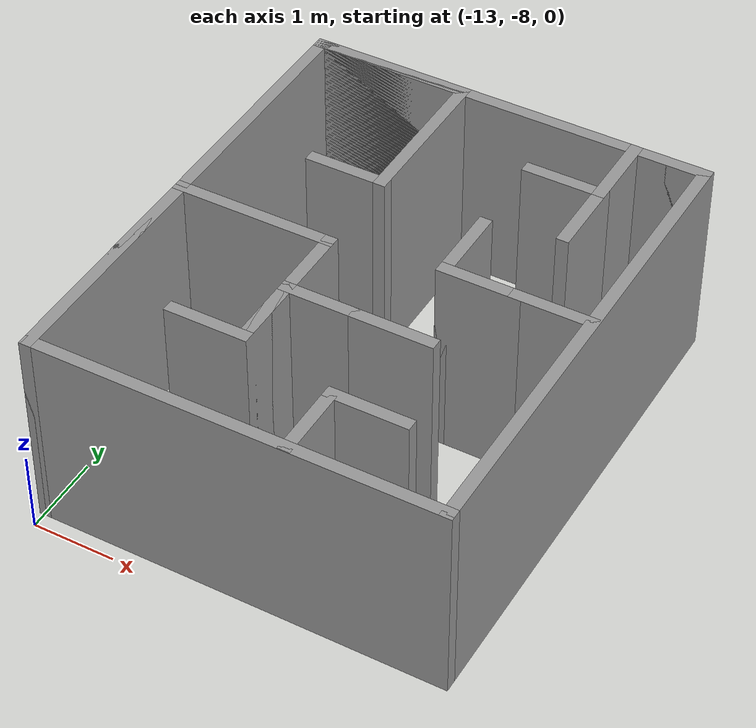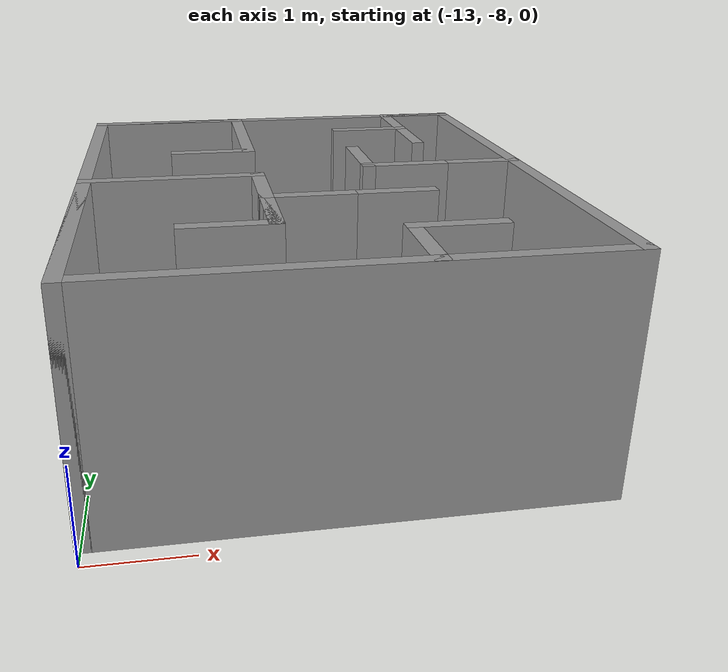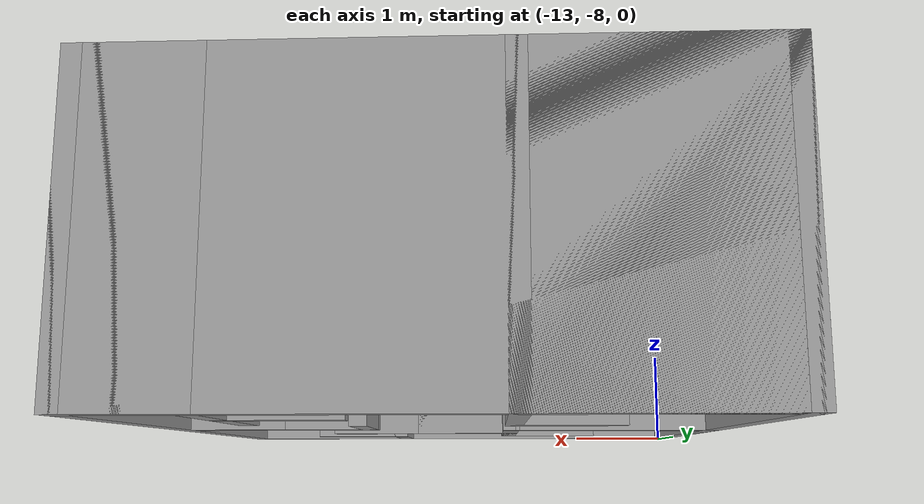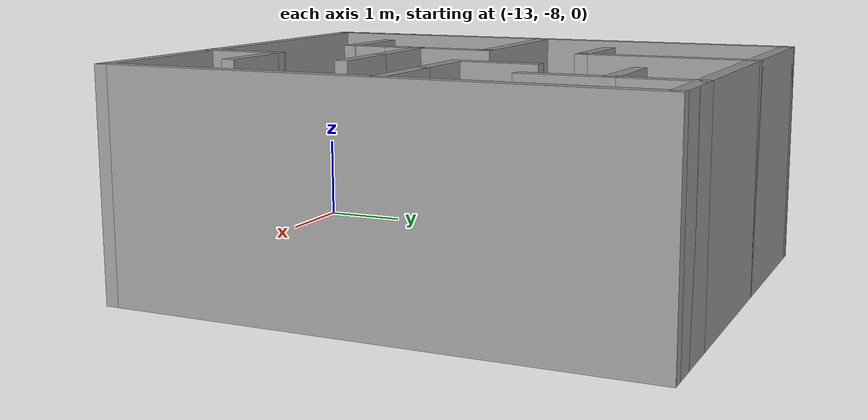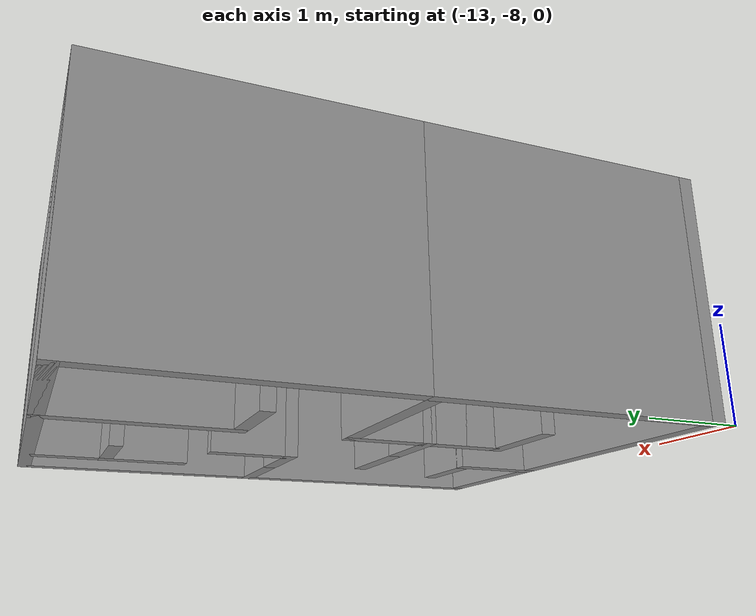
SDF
<?xml version='1.0'?>
<sdf version='1.6'>
  <model name='building4'>
    <pose frame=''>-10.555 -4.825 0 0 -0 0</pose>
    <link name='Wall_0'>
      <collision name='Wall_0_Collision'>
        <geometry>
          <box>
            <size>5 0.15 2.5</size>
          </box>
        </geometry>
        <pose frame=''>0 0 1.25 0 -0 0</pose>
      </collision>
      <visual name='Wall_0_Visual'>
        <pose frame=''>0 0 1.25 0 -0 0</pose>
        <geometry>
          <box>
            <size>5 0.15 2.5</size>
          </box>
        </geometry>
        <material>
          <script>
            <uri>file://media/materials/scripts/gazebo.material</uri>
            <name>Gazebo/Grey</name>
          </script>
          <ambient>1 1 1 1</ambient>
        </material>
        <meta>
          <layer>0</layer>
        </meta>
      </visual>
      <pose frame=''>0 2.925 0 0 -0 0</pose>
    </link>
    <link name='Wall_1'>
      <collision name='Wall_1_Collision'>
        <geometry>
          <box>
            <size>6 0.15 2.5</size>
          </box>
        </geometry>
        <pose frame=''>0 0 1.25 0 -0 0</pose>
      </collision>
      <visual name='Wall_1_Visual'>
        <pose frame=''>0 0 1.25 0 -0 0</pose>
        <geometry>
          <box>
            <size>6 0.15 2.5</size>
          </box>
        </geometry>
        <material>
          <script>
            <uri>file://media/materials/scripts/gazebo.material</uri>
            <name>Gazebo/Grey</name>
          </script>
          <ambient>1 1 1 1</ambient>
        </material>
        <meta>
          <layer>0</layer>
        </meta>
      </visual>
      <pose frame=''>2.425 0 0 0 0 -1.5708</pose>
    </link>
    <link name='Wall_11'>
      <collision name='Wall_11_Collision'>
        <geometry>
          <box>
            <size>3 0.15 2.5</size>
          </box>
        </geometry>
        <pose frame=''>0 0 1.25 0 -0 0</pose>
      </collision>
      <visual name='Wall_11_Visual'>
        <pose frame=''>0 0 1.25 0 -0 0</pose>
        <geometry>
          <box>
            <size>3 0.15 2.5</size>
          </box>
        </geometry>
        <material>
          <script>
            <uri>file://media/materials/scripts/gazebo.material</uri>
            <name>Gazebo/Grey</name>
          </script>
          <ambient>1 1 1 1</ambient>
        </material>
        <meta>
          <layer>0</layer>
        </meta>
      </visual>
      <pose frame=''>-2.425 -1.5 0 0 -0 1.5708</pose>
    </link>
    <link name='Wall_12'>
      <collision name='Wall_12_Collision'>
        <geometry>
          <box>
            <size>2 0.15 2.5</size>
          </box>
        </geometry>
        <pose frame=''>0 0 1.25 0 -0 0</pose>
      </collision>
      <visual name='Wall_12_Visual'>
        <pose frame=''>0 0 1.25 0 -0 0</pose>
        <geometry>
          <box>
            <size>2 0.15 2.5</size>
          </box>
        </geometry>
        <material>
          <script>
            <uri>file://media/materials/scripts/gazebo.material</uri>
            <name>Gazebo/Grey</name>
          </script>
          <ambient>1 1 1 1</ambient>
        </material>
        <meta>
          <layer>0</layer>
        </meta>
      </visual>
      <pose frame=''>-1.5 -0.075 0 0 -0 0</pose>
    </link>
    <link name='Wall_14'>
      <collision name='Wall_14_Collision'>
        <geometry>
          <box>
            <size>1 0.15 2.5</size>
          </box>
        </geometry>
        <pose frame=''>0 0 1.25 0 -0 0</pose>
      </collision>
      <visual name='Wall_14_Visual'>
        <pose frame=''>0 0 1.25 0 -0 0</pose>
        <geometry>
          <box>
            <size>1 0.15 2.5</size>
          </box>
        </geometry>
        <material>
          <script>
            <uri>file://media/materials/scripts/gazebo.material</uri>
            <name>Gazebo/Grey</name>
          </script>
          <ambient>1 1 1 1</ambient>
        </material>
        <meta>
          <layer>0</layer>
        </meta>
      </visual>
      <pose frame=''>-0.575 -0.5 0 0 0 -1.5708</pose>
    </link>
    <link name='Wall_15'>
      <collision name='Wall_15_Collision'>
        <geometry>
          <box>
            <size>1 0.15 2.5</size>
          </box>
        </geometry>
        <pose frame=''>0 0 1.25 0 -0 0</pose>
      </collision>
      <visual name='Wall_15_Visual'>
        <pose frame=''>0 0 1.25 0 -0 0</pose>
        <geometry>
          <box>
            <size>1 0.15 2.5</size>
          </box>
        </geometry>
        <material>
          <script>
            <uri>file://media/materials/scripts/gazebo.material</uri>
            <name>Gazebo/Grey</name>
          </script>
          <ambient>1 1 1 1</ambient>
        </material>
        <meta>
          <layer>0</layer>
        </meta>
      </visual>
      <pose frame=''>-0.575 -1.35 0 0 0 -1.5708</pose>
    </link>
    <link name='Wall_16'>
      <collision name='Wall_16_Collision'>
        <geometry>
          <box>
            <size>1 0.15 2.5</size>
          </box>
        </geometry>
        <pose frame=''>0 0 1.25 0 -0 0</pose>
      </collision>
      <visual name='Wall_16_Visual'>
        <pose frame=''>0 0 1.25 0 -0 0</pose>
        <geometry>
          <box>
            <size>1 0.15 2.5</size>
          </box>
        </geometry>
        <material>
          <script>
            <uri>file://media/materials/scripts/gazebo.material</uri>
            <name>Gazebo/Grey</name>
          </script>
          <ambient>1 1 1 1</ambient>
        </material>
        <meta>
          <layer>0</layer>
        </meta>
      </visual>
      <pose frame=''>-1 -1.775 0 0 -0 3.14159</pose>
    </link>
    <link name='Wall_19'>
      <collision name='Wall_19_Collision'>
        <geometry>
          <box>
            <size>1 0.15 2.5</size>
          </box>
        </geometry>
        <pose frame=''>0 0 1.25 0 -0 0</pose>
      </collision>
      <visual name='Wall_19_Visual'>
        <pose frame=''>0 0 1.25 0 -0 0</pose>
        <geometry>
          <box>
            <size>1 0.15 2.5</size>
          </box>
        </geometry>
        <material>
          <script>
            <uri>file://media/materials/scripts/gazebo.material</uri>
            <name>Gazebo/Grey</name>
          </script>
          <ambient>1 1 1 1</ambient>
        </material>
        <meta>
          <layer>0</layer>
        </meta>
      </visual>
      <pose frame=''>-0.575 -1.35 0 0 -0 1.5708</pose>
    </link>
    <link name='Wall_2'>
      <collision name='Wall_2_Collision'>
        <geometry>
          <box>
            <size>5 0.15 2.5</size>
          </box>
        </geometry>
        <pose frame=''>0 0 1.25 0 -0 0</pose>
      </collision>
      <visual name='Wall_2_Visual'>
        <pose frame=''>0 0 1.25 0 -0 0</pose>
        <geometry>
          <box>
            <size>5 0.15 2.5</size>
          </box>
        </geometry>
        <material>
          <script>
            <uri>file://media/materials/scripts/gazebo.material</uri>
            <name>Gazebo/Grey</name>
          </script>
          <ambient>1 1 1 1</ambient>
        </material>
        <meta>
          <layer>0</layer>
        </meta>
      </visual>
      <pose frame=''>0 -2.925 0 0 -0 3.14159</pose>
    </link>
    <link name='Wall_20'>
      <collision name='Wall_20_Collision'>
        <geometry>
          <box>
            <size>1 0.15 2.5</size>
          </box>
        </geometry>
        <pose frame=''>0 0 1.25 0 -0 0</pose>
      </collision>
      <visual name='Wall_20_Visual'>
        <pose frame=''>0 0 1.25 0 -0 0</pose>
        <geometry>
          <box>
            <size>1 0.15 2.5</size>
          </box>
        </geometry>
        <material>
          <script>
            <uri>file://media/materials/scripts/gazebo.material</uri>
            <name>Gazebo/Grey</name>
          </script>
          <ambient>1 1 1 1</ambient>
        </material>
        <meta>
          <layer>0</layer>
        </meta>
      </visual>
      <pose frame=''>-0.15 -0.925 0 0 -0 0</pose>
    </link>
    <link name='Wall_21'>
      <collision name='Wall_21_Collision'>
        <geometry>
          <box>
            <size>1 0.15 2.5</size>
          </box>
        </geometry>
        <pose frame=''>0 0 1.25 0 -0 0</pose>
      </collision>
      <visual name='Wall_21_Visual'>
        <pose frame=''>0 0 1.25 0 -0 0</pose>
        <geometry>
          <box>
            <size>1 0.15 2.5</size>
          </box>
        </geometry>
        <material>
          <script>
            <uri>file://media/materials/scripts/gazebo.material</uri>
            <name>Gazebo/Grey</name>
          </script>
          <ambient>1 1 1 1</ambient>
        </material>
        <meta>
          <layer>0</layer>
        </meta>
      </visual>
      <pose frame=''>0.7 -0.925 0 0 -0 0</pose>
    </link>
    <link name='Wall_25'>
      <collision name='Wall_25_Collision'>
        <geometry>
          <box>
            <size>1 0.15 2.5</size>
          </box>
        </geometry>
        <pose frame=''>0 0 1.25 0 -0 0</pose>
      </collision>
      <visual name='Wall_25_Visual'>
        <pose frame=''>0 0 1.25 0 -0 0</pose>
        <geometry>
          <box>
            <size>1 0.15 2.5</size>
          </box>
        </geometry>
        <material>
          <script>
            <uri>file://media/materials/scripts/gazebo.material</uri>
            <name>Gazebo/Grey</name>
          </script>
          <ambient>1 1 1 1</ambient>
        </material>
        <meta>
          <layer>0</layer>
        </meta>
      </visual>
      <pose frame=''>2 2.925 0 0 -0 3.14159</pose>
    </link>
    <link name='Wall_26'>
      <collision name='Wall_26_Collision'>
        <geometry>
          <box>
            <size>1 0.15 2.5</size>
          </box>
        </geometry>
        <pose frame=''>0 0 1.25 0 -0 0</pose>
      </collision>
      <visual name='Wall_26_Visual'>
        <pose frame=''>0 0 1.25 0 -0 0</pose>
        <geometry>
          <box>
            <size>1 0.15 2.5</size>
          </box>
        </geometry>
        <material>
          <script>
            <uri>file://media/materials/scripts/gazebo.material</uri>
            <name>Gazebo/Grey</name>
          </script>
          <ambient>1 1 1 1</ambient>
        </material>
        <meta>
          <layer>0</layer>
        </meta>
      </visual>
      <pose frame=''>1.575 2.5 0 0 0 -1.5708</pose>
    </link>
    <link name='Wall_3'>
      <collision name='Wall_3_Collision'>
        <geometry>
          <box>
            <size>6 0.15 2.5</size>
          </box>
        </geometry>
        <pose frame=''>0 0 1.25 0 -0 0</pose>
      </collision>
      <visual name='Wall_3_Visual'>
        <pose frame=''>0 0 1.25 0 -0 0</pose>
        <geometry>
          <box>
            <size>6 0.15 2.5</size>
          </box>
        </geometry>
        <material>
          <script>
            <uri>file://media/materials/scripts/gazebo.material</uri>
            <name>Gazebo/Grey</name>
          </script>
          <ambient>1 1 1 1</ambient>
        </material>
        <meta>
          <layer>0</layer>
        </meta>
      </visual>
      <pose frame=''>-2.425 0 0 0 -0 1.5708</pose>
    </link>
    <link name='Wall_30'>
      <collision name='Wall_30_Collision'>
        <geometry>
          <box>
            <size>1 0.15 2.5</size>
          </box>
        </geometry>
        <pose frame=''>0 0 1.25 0 -0 0</pose>
      </collision>
      <visual name='Wall_30_Visual'>
        <pose frame=''>0 0 1.25 0 -0 0</pose>
        <geometry>
          <box>
            <size>1 0.15 2.5</size>
          </box>
        </geometry>
        <material>
          <script>
            <uri>file://media/materials/scripts/gazebo.material</uri>
            <name>Gazebo/Grey</name>
          </script>
          <ambient>1 1 1 1</ambient>
        </material>
        <meta>
          <layer>0</layer>
        </meta>
      </visual>
      <pose frame=''>0.631976 -2.49026 0 0 -0 1.5708</pose>
    </link>
    <link name='Wall_32'>
      <collision name='Wall_32_Collision'>
        <geometry>
          <box>
            <size>1 0.15 2.5</size>
          </box>
        </geometry>
        <pose frame=''>0 0 1.25 0 -0 0</pose>
      </collision>
      <visual name='Wall_32_Visual'>
        <pose frame=''>0 0 1.25 0 -0 0</pose>
        <geometry>
          <box>
            <size>1 0.15 2.5</size>
          </box>
        </geometry>
        <material>
          <script>
            <uri>file://media/materials/scripts/gazebo.material</uri>
            <name>Gazebo/Grey</name>
          </script>
          <ambient>1 1 1 1</ambient>
        </material>
        <meta>
          <layer>0</layer>
        </meta>
      </visual>
      <pose frame=''>1.15 2.075 0 0 -0 3.14159</pose>
    </link>
    <link name='Wall_34'>
      <collision name='Wall_34_Collision'>
        <geometry>
          <box>
            <size>1 0.15 2.5</size>
          </box>
        </geometry>
        <pose frame=''>0 0 1.25 0 -0 0</pose>
      </collision>
      <visual name='Wall_34_Visual'>
        <pose frame=''>0 0 1.25 0 -0 0</pose>
        <geometry>
          <box>
            <size>1 0.15 2.5</size>
          </box>
        </geometry>
        <material>
          <script>
            <uri>file://media/materials/scripts/gazebo.material</uri>
            <name>Gazebo/Grey</name>
          </script>
          <ambient>1 1 1 1</ambient>
        </material>
        <meta>
          <layer>0</layer>
        </meta>
      </visual>
      <pose frame=''>1.05698 -2.06526 0 0 -0 0</pose>
    </link>
    <link name='Wall_36'>
      <collision name='Wall_36_Collision'>
        <geometry>
          <box>
            <size>1 0.15 2.5</size>
          </box>
        </geometry>
        <pose frame=''>0 0 1.25 0 -0 0</pose>
      </collision>
      <visual name='Wall_36_Visual'>
        <pose frame=''>0 0 1.25 0 -0 0</pose>
        <geometry>
          <box>
            <size>1 0.15 2.5</size>
          </box>
        </geometry>
        <material>
          <script>
            <uri>file://media/materials/scripts/gazebo.material</uri>
            <name>Gazebo/Grey</name>
          </script>
          <ambient>1 1 1 1</ambient>
        </material>
        <meta>
          <layer>0</layer>
        </meta>
      </visual>
      <pose frame=''>1.98323 0.149353 0 0 -0 3.14159</pose>
    </link>
    <link name='Wall_37'>
      <collision name='Wall_37_Collision'>
        <geometry>
          <box>
            <size>1 0.15 2.5</size>
          </box>
        </geometry>
        <pose frame=''>0 0 1.25 0 -0 0</pose>
      </collision>
      <visual name='Wall_37_Visual'>
        <pose frame=''>0 0 1.25 0 -0 0</pose>
        <geometry>
          <box>
            <size>1 0.15 2.5</size>
          </box>
        </geometry>
        <material>
          <script>
            <uri>file://media/materials/scripts/gazebo.material</uri>
            <name>Gazebo/Grey</name>
          </script>
          <ambient>1 1 1 1</ambient>
        </material>
        <meta>
          <layer>0</layer>
        </meta>
      </visual>
      <pose frame=''>1.13323 0.149353 0 0 -0 3.14159</pose>
    </link>
    <link name='Wall_39'>
      <collision name='Wall_39_Collision'>
        <geometry>
          <box>
            <size>1 0.15 2.5</size>
          </box>
        </geometry>
        <pose frame=''>0 0 1.25 0 -0 0</pose>
      </collision>
      <visual name='Wall_39_Visual'>
        <pose frame=''>0 0 1.25 0 -0 0</pose>
        <geometry>
          <box>
            <size>1 0.15 2.5</size>
          </box>
        </geometry>
        <material>
          <script>
            <uri>file://media/materials/scripts/gazebo.material</uri>
            <name>Gazebo/Grey</name>
          </script>
          <ambient>1 1 1 1</ambient>
        </material>
        <meta>
          <layer>0</layer>
        </meta>
      </visual>
      <pose frame=''>1.575 1.65 0 0 0 -1.5708</pose>
    </link>
    <link name='Wall_41'>
      <collision name='Wall_41_Collision'>
        <geometry>
          <box>
            <size>1 0.15 2.5</size>
          </box>
        </geometry>
        <pose frame=''>0 0 1.25 0 -0 0</pose>
      </collision>
      <visual name='Wall_41_Visual'>
        <pose frame=''>0 0 1.25 0 -0 0</pose>
        <geometry>
          <box>
            <size>1 0.15 2.5</size>
          </box>
        </geometry>
        <material>
          <script>
            <uri>file://media/materials/scripts/gazebo.material</uri>
            <name>Gazebo/Grey</name>
          </script>
          <ambient>1 1 1 1</ambient>
        </material>
        <meta>
          <layer>0</layer>
        </meta>
      </visual>
      <pose frame=''>0.708233 0.574353 0 0 -0 1.5708</pose>
    </link>
    <link name='Wall_5'>
      <collision name='Wall_5_Collision'>
        <geometry>
          <box>
            <size>2 0.15 2.5</size>
          </box>
        </geometry>
        <pose frame=''>0 0 1.25 0 -0 0</pose>
      </collision>
      <visual name='Wall_5_Visual'>
        <pose frame=''>0 0 1.25 0 -0 0</pose>
        <geometry>
          <box>
            <size>2 0.15 2.5</size>
          </box>
        </geometry>
        <material>
          <script>
            <uri>file://media/materials/scripts/gazebo.material</uri>
            <name>Gazebo/Grey</name>
          </script>
          <ambient>1 1 1 1</ambient>
        </material>
        <meta>
          <layer>0</layer>
        </meta>
      </visual>
      <pose frame=''>-1.5 2.925 0 0 -0 0</pose>
    </link>
    <link name='Wall_6'>
      <collision name='Wall_6_Collision'>
        <geometry>
          <box>
            <size>2 0.15 2.5</size>
          </box>
        </geometry>
        <pose frame=''>0 0 1.25 0 -0 0</pose>
      </collision>
      <visual name='Wall_6_Visual'>
        <pose frame=''>0 0 1.25 0 -0 0</pose>
        <geometry>
          <box>
            <size>2 0.15 2.5</size>
          </box>
        </geometry>
        <material>
          <script>
            <uri>file://media/materials/scripts/gazebo.material</uri>
            <name>Gazebo/Grey</name>
          </script>
          <ambient>1 1 1 1</ambient>
        </material>
        <meta>
          <layer>0</layer>
        </meta>
      </visual>
      <pose frame=''>-0.575 2 0 0 0 -1.5708</pose>
    </link>
    <link name='Wall_8'>
      <collision name='Wall_8_Collision'>
        <geometry>
          <box>
            <size>1 0.15 2.5</size>
          </box>
        </geometry>
        <pose frame=''>0 0 1.25 0 -0 0</pose>
      </collision>
      <visual name='Wall_8_Visual'>
        <pose frame=''>0 0 1.25 0 -0 0</pose>
        <geometry>
          <box>
            <size>1 0.15 2.5</size>
          </box>
        </geometry>
        <material>
          <script>
            <uri>file://media/materials/scripts/gazebo.material</uri>
            <name>Gazebo/Grey</name>
          </script>
          <ambient>1 1 1 1</ambient>
        </material>
        <meta>
          <layer>0</layer>
        </meta>
      </visual>
      <pose frame=''>-1 1.075 0 0 -0 3.14159</pose>
    </link>
    <static>1</static>
  </model>
</sdf>
